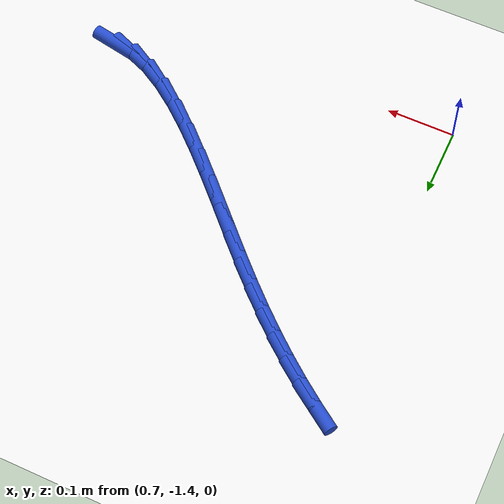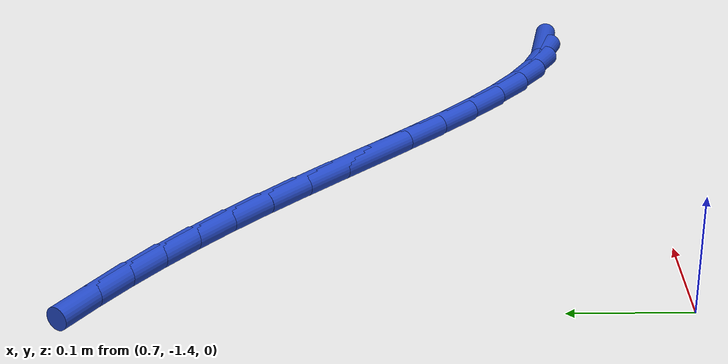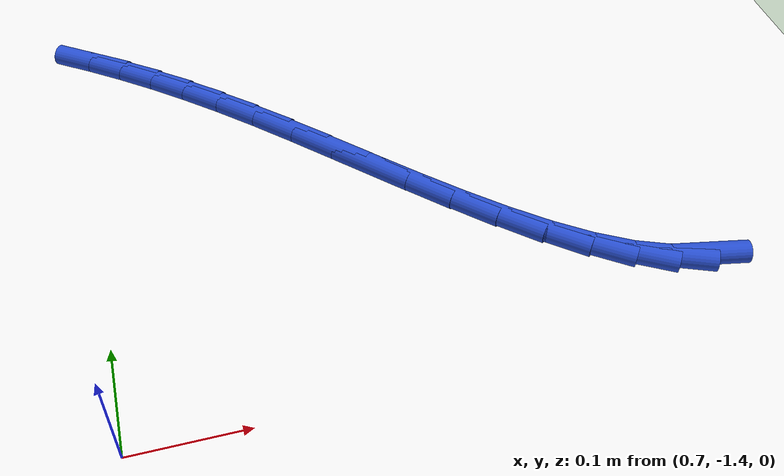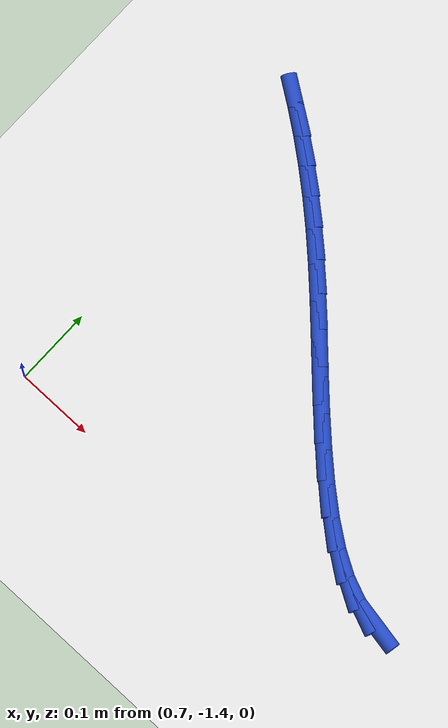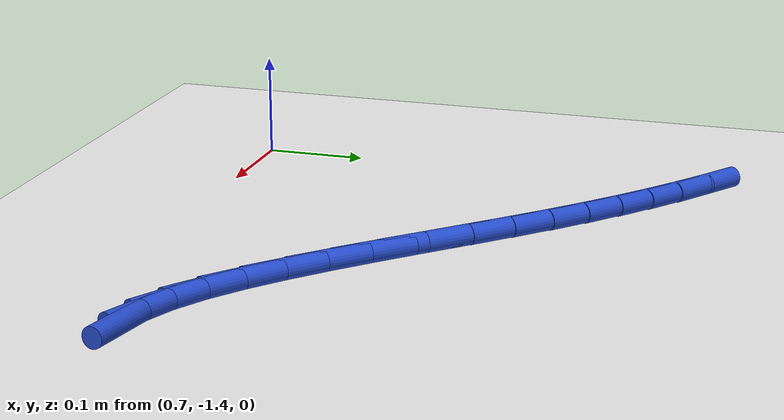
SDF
<sdf version="1.6">
 <world name="default">
  <model name="ground_plane">
   <static>1</static>
   <link name="link">
    <collision name="collision">
     <geometry><plane><normal>0 0 1</normal><size>100 100</size></plane></geometry>
     <surface><friction><ode><mu>100</mu><mu2>50</mu2></ode></friction></surface>
    </collision>
    <visual name="visual">
     <cast_shadows>0</cast_shadows>
     <geometry><plane><normal>0 0 1</normal><size>100 100</size></plane></geometry>
     <material>
      <script><uri>file://media/materials/scripts/gazebo.material</uri><name>Gazebo/WhiteGlow</name></script>
     </material>
    </visual>
   </link>
  </model>
  <model name="line">
   <link name="link_151">
    <pose>1.2048282234774308 -1.3344064883066782 0.01 0 1.57 -0.18598042544888255</pose>
    <collision name="collision">
     <geometry><cylinder><radius>0.01</radius><length>0.08</length></cylinder></geometry>
    </collision>
    <visual name="visual">
     <material>
      <script><name>Gazebo/Blue</name><uri>file://media/materials/scripts/gazebo.material</uri></script>
     </material>
     <geometry><cylinder><radius>0.01</radius><length>0.08</length></cylinder></geometry>
    </visual>
   </link>
   <link name="link_152">
    <pose>1.1766288415145356 -1.3291006395532063 0.01 0 1.57 -0.3859703711861333</pose>
    <collision name="collision">
     <geometry><cylinder><radius>0.01</radius><length>0.08</length></cylinder></geometry>
    </collision>
    <visual name="visual">
     <material>
      <script><name>Gazebo/Blue</name><uri>file://media/materials/scripts/gazebo.material</uri></script>
     </material>
     <geometry><cylinder><radius>0.01</radius><length>0.08</length></cylinder></geometry>
    </visual>
   </link>
   <link name="link_153">
    <pose>1.147182879912394 -1.3171352088742934 0.01 0 1.57 -0.5263181103893229</pose>
    <collision name="collision">
     <geometry><cylinder><radius>0.01</radius><length>0.08</length></cylinder></geometry>
    </collision>
    <visual name="visual">
     <material>
      <script><name>Gazebo/Blue</name><uri>file://media/materials/scripts/gazebo.material</uri></script>
     </material>
     <geometry><cylinder><radius>0.01</radius><length>0.08</length></cylinder></geometry>
    </visual>
   </link>
   <link name="link_154">
    <pose>1.1167074023819965 -1.2994295123221582 0.01 0 1.57 -0.6240090962215404</pose>
    <collision name="collision">
     <geometry><cylinder><radius>0.01</radius><length>0.08</length></cylinder></geometry>
    </collision>
    <visual name="visual">
     <material>
      <script><name>Gazebo/Blue</name><uri>file://media/materials/scripts/gazebo.material</uri></script>
     </material>
     <geometry><cylinder><radius>0.01</radius><length>0.08</length></cylinder></geometry>
    </visual>
   </link>
   <link name="link_155">
    <pose>1.085419472634334 -1.2769028659490183 0.01 0 1.57 -0.6921198460339147</pose>
    <collision name="collision">
     <geometry><cylinder><radius>0.01</radius><length>0.08</length></cylinder></geometry>
    </collision>
    <visual name="visual">
     <material>
      <script><name>Gazebo/Blue</name><uri>file://media/materials/scripts/gazebo.material</uri></script>
     </material>
     <geometry><cylinder><radius>0.01</radius><length>0.08</length></cylinder></geometry>
    </visual>
   </link>
   <link name="link_156">
    <pose>1.0535361543803974 -1.2504745858070927 0.01 0 1.57 -0.7392020670446449</pose>
    <collision name="collision">
     <geometry><cylinder><radius>0.01</radius><length>0.08</length></cylinder></geometry>
    </collision>
    <visual name="visual">
     <material>
      <script><name>Gazebo/Blue</name><uri>file://media/materials/scripts/gazebo.material</uri></script>
     </material>
     <geometry><cylinder><radius>0.01</radius><length>0.08</length></cylinder></geometry>
    </visual>
   </link>
   <link name="link_157">
    <pose>1.0212745113311779 -1.2210639879486012 0.01 0 1.57 -0.770542346261363</pose>
    <collision name="collision">
     <geometry><cylinder><radius>0.01</radius><length>0.08</length></cylinder></geometry>
    </collision>
    <visual name="visual">
     <material>
      <script><name>Gazebo/Blue</name><uri>file://media/materials/scripts/gazebo.material</uri></script>
     </material>
     <geometry><cylinder><radius>0.01</radius><length>0.08</length></cylinder></geometry>
    </visual>
   </link>
   <link name="link_158">
    <pose>0.9888516071976658 -1.1895903884257601 0.01 0 1.57 -0.7892480480396451</pose>
    <collision name="collision">
     <geometry><cylinder><radius>0.01</radius><length>0.08</length></cylinder></geometry>
    </collision>
    <visual name="visual">
     <material>
      <script><name>Gazebo/Blue</name><uri>file://media/materials/scripts/gazebo.material</uri></script>
     </material>
     <geometry><cylinder><radius>0.01</radius><length>0.08</length></cylinder></geometry>
    </visual>
   </link>
   <link name="link_159">
    <pose>0.9564845056908523 -1.156973103290789 0.01 0 1.57 -0.7969077696139685</pose>
    <collision name="collision">
     <geometry><cylinder><radius>0.01</radius><length>0.08</length></cylinder></geometry>
    </collision>
    <visual name="visual">
     <material>
      <script><name>Gazebo/Blue</name><uri>file://media/materials/scripts/gazebo.material</uri></script>
     </material>
     <geometry><cylinder><radius>0.01</radius><length>0.08</length></cylinder></geometry>
    </visual>
   </link>
   <link name="link_160">
    <pose>0.9243902705217282 -1.1241314485959066 0.01 0 1.57 -0.7939061065107628</pose>
    <collision name="collision">
     <geometry><cylinder><radius>0.01</radius><length>0.08</length></cylinder></geometry>
    </collision>
    <visual name="visual">
     <material>
      <script><name>Gazebo/Blue</name><uri>file://media/materials/scripts/gazebo.material</uri></script>
     </material>
     <geometry><cylinder><radius>0.01</radius><length>0.08</length></cylinder></geometry>
    </visual>
   </link>
   <link name="link_161">
    <pose>0.8927859654012846 -1.0919847403933318 0.01 0 1.57 -0.7794734622440002</pose>
    <collision name="collision">
     <geometry><cylinder><radius>0.01</radius><length>0.08</length></cylinder></geometry>
    </collision>
    <visual name="visual">
     <material>
      <script><name>Gazebo/Blue</name><uri>file://media/materials/scripts/gazebo.material</uri></script>
     </material>
     <geometry><cylinder><radius>0.01</radius><length>0.08</length></cylinder></geometry>
    </visual>
   </link>
   <link name="link_162">
    <pose>0.8618879991648162 -1.0614507444328651 0.01 0 1.57 -0.7549406841500818</pose>
    <collision name="collision">
     <geometry><cylinder><radius>0.01</radius><length>0.08</length></cylinder></geometry>
    </collision>
    <visual name="visual">
     <material>
      <script><name>Gazebo/Blue</name><uri>file://media/materials/scripts/gazebo.material</uri></script>
     </material>
     <geometry><cylinder><radius>0.01</radius><length>0.08</length></cylinder></geometry>
    </visual>
   </link>
   <link name="link_163">
    <pose>0.831773134392791 -1.0331166386478012 0.01 0 1.57 -0.7267144828613221</pose>
    <collision name="collision">
     <geometry><cylinder><radius>0.01</radius><length>0.08</length></cylinder></geometry>
    </collision>
    <visual name="visual">
     <material>
      <script><name>Gazebo/Blue</name><uri>file://media/materials/scripts/gazebo.material</uri></script>
     </material>
     <geometry><cylinder><radius>0.01</radius><length>0.08</length></cylinder></geometry>
    </visual>
   </link>
   <link name="link_164">
    <pose>0.8022061644152987 -1.006831068932551 0.01 0 1.57 -0.6962405147969891</pose>
    <collision name="collision">
     <geometry><cylinder><radius>0.01</radius><length>0.08</length></cylinder></geometry>
    </collision>
    <visual name="visual">
     <material>
      <script><name>Gazebo/Blue</name><uri>file://media/materials/scripts/gazebo.material</uri></script>
     </material>
     <geometry><cylinder><radius>0.01</radius><length>0.08</length></cylinder></geometry>
    </visual>
   </link>
   <link name="link_165">
    <pose>0.7729096090140675 -0.9823426060304509 0.01 0 1.57 -0.6642475368356863</pose>
    <collision name="collision">
     <geometry><cylinder><radius>0.01</radius><length>0.08</length></cylinder></geometry>
    </collision>
    <visual name="visual">
     <material>
      <script><name>Gazebo/Blue</name><uri>file://media/materials/scripts/gazebo.material</uri></script>
     </material>
     <geometry><cylinder><radius>0.01</radius><length>0.08</length></cylinder></geometry>
    </visual>
   </link>
   <link name="link_166">
    <pose>0.7436059879708256 -0.9593998206848361 0.01 0 1.57 -0.6316611115827704</pose>
    <collision name="collision">
     <geometry><cylinder><radius>0.01</radius><length>0.08</length></cylinder></geometry>
    </collision>
    <visual name="visual">
     <material>
      <script><name>Gazebo/Blue</name><uri>file://media/materials/scripts/gazebo.material</uri></script>
     </material>
     <geometry><cylinder><radius>0.01</radius><length>0.08</length></cylinder></geometry>
    </visual>
   </link>
   <link name="link_167">
    <pose>0.7140178210673015 -0.937751283639043 0.01 0 1.57 -0.5995222582541481</pose>
    <collision name="collision">
     <geometry><cylinder><radius>0.01</radius><length>0.08</length></cylinder></geometry>
    </collision>
    <visual name="visual">
     <material>
      <script><name>Gazebo/Blue</name><uri>file://media/materials/scripts/gazebo.material</uri></script>
     </material>
     <geometry><cylinder><radius>0.01</radius><length>0.08</length></cylinder></geometry>
    </visual>
   </link>
  </model>
 </world>
</sdf>
